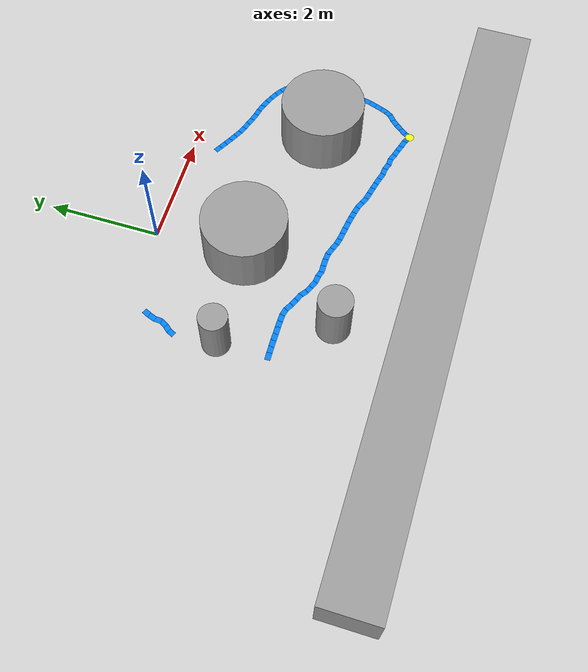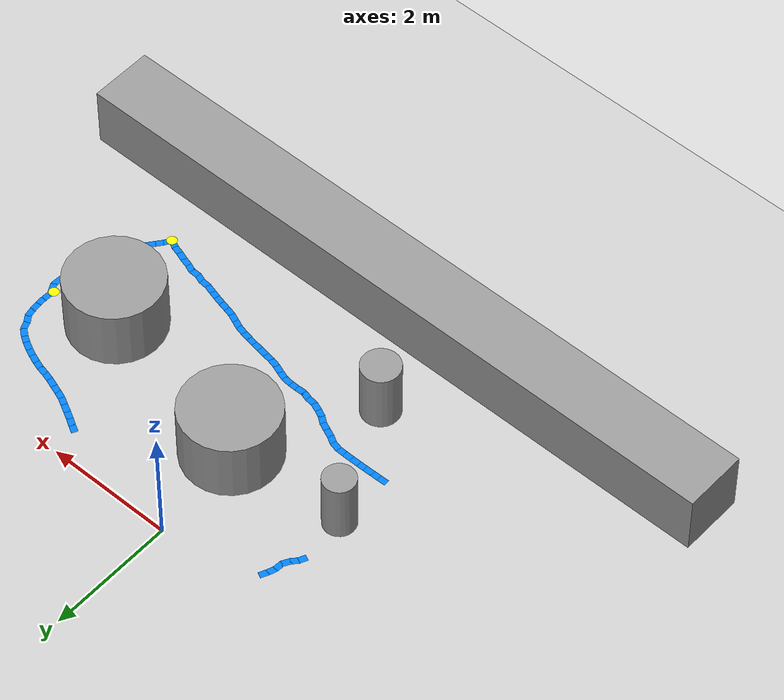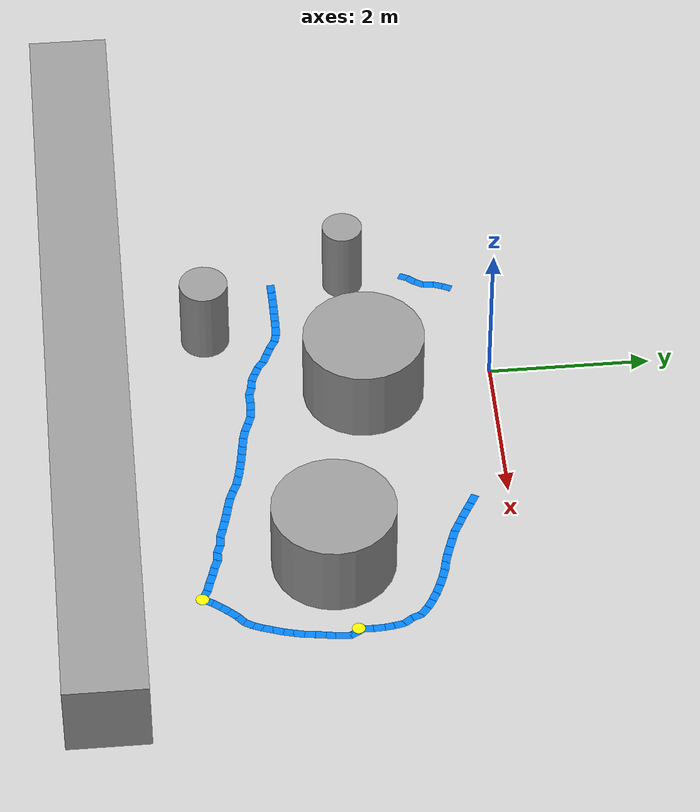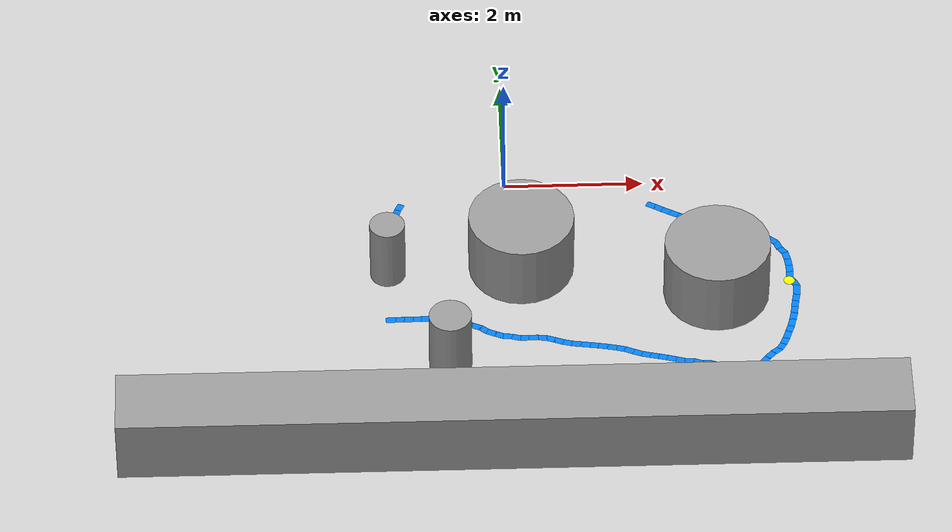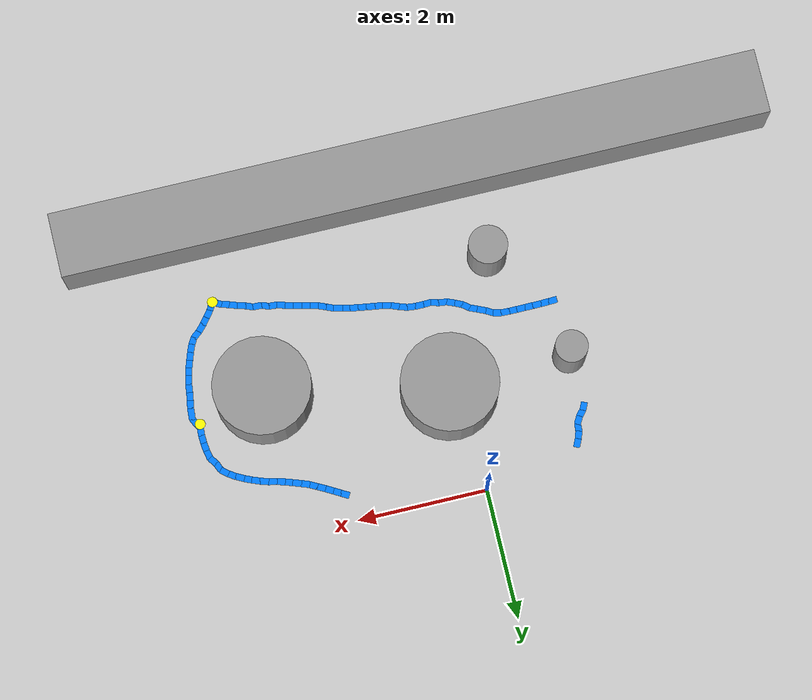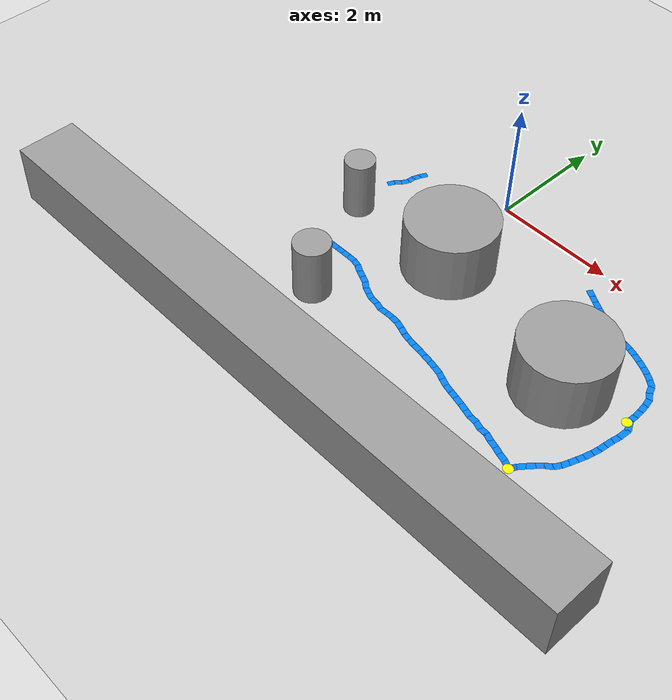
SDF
<sdf version="1.6">
 <world name="default">
  <include><uri>model://sun</uri></include>
  <include><uri>model://ground_plane</uri></include>
  <model name="wall_south">
   <static>true</static>
   <pose>0 -5.0 0.5 0 0 0</pose>
   <link name="link">
    <collision name="collision"><geometry><box><size>11.0 1.0 1.0</size></box></geometry></collision>
    <visual name="visual">
     <geometry><box><size>11.0 1.0 1.0</size></box></geometry>
     <material>
      <script><uri>file://media/materials/scripts/gazebo.material</uri><name>Gazebo/Grey</name></script>
     </material>
    </visual>
   </link>
  </model>
  <model name="obstacle_5">
   <static>true</static>
   <pose>0.20000000000000018 -1.5999999999999996 0.5 0 0 0</pose>
   <link name="link">
    <visual name="visual">
     <geometry><cylinder><radius>0.75</radius><length>1.0</length></cylinder></geometry>
     <material>
      <script><uri>file://media/materials/scripts/gazebo.material</uri><name>Gazebo/Grey</name></script>
     </material>
    </visual>
    <collision name="collision">
     <geometry><cylinder><radius>0.75</radius><length>1.0</length></cylinder></geometry>
    </collision>
   </link>
  </model>
  <model name="obstacle_9">
   <static>true</static>
   <pose>-0.8499999999999996 -3.5 0.5 0 0 0</pose>
   <link name="link">
    <visual name="visual">
     <geometry><cylinder><radius>0.30000000000000004</radius><length>1.0</length></cylinder></geometry>
     <material>
      <script><uri>file://media/materials/scripts/gazebo.material</uri><name>Gazebo/Grey</name></script>
     </material>
    </visual>
    <collision name="collision">
     <geometry><cylinder><radius>0.30000000000000004</radius><length>1.0</length></cylinder></geometry>
    </collision>
   </link>
  </model>
  <model name="obstacle_12">
   <static>true</static>
   <pose>2.950000000000001 -2.1999999999999997 0.5 0 0 0</pose>
   <link name="link">
    <visual name="visual">
     <geometry><cylinder><radius>0.75</radius><length>1.0</length></cylinder></geometry>
     <material>
      <script><uri>file://media/materials/scripts/gazebo.material</uri><name>Gazebo/Grey</name></script>
     </material>
    </visual>
    <collision name="collision">
     <geometry><cylinder><radius>0.75</radius><length>1.0</length></cylinder></geometry>
    </collision>
   </link>
  </model>
  <model name="obstacle_16">
   <static>true</static>
   <pose>-1.6999999999999997 -1.6999999999999997 0.5 0 0 0</pose>
   <link name="link">
    <visual name="visual">
     <geometry><cylinder><radius>0.25</radius><length>1.0</length></cylinder></geometry>
     <material>
      <script><uri>file://media/materials/scripts/gazebo.material</uri><name>Gazebo/Grey</name></script>
     </material>
    </visual>
    <collision name="collision">
     <geometry><cylinder><radius>0.25</radius><length>1.0</length></cylinder></geometry>
    </collision>
   </link>
  </model>
  <model name="yellow_dot_marker_4">
   <static>true</static>
   <pose>3.4 -3.8 0.00015 0 0 0</pose>
   <link name="link">
    <visual name="visual">
     <geometry><cylinder><radius>0.08</radius><length>0.0001</length></cylinder></geometry>
     <material><ambient>1 1 0 1</ambient><diffuse>1 1 0 1</diffuse></material>
    </visual>
   </link>
  </model>
  <model name="yellow_dot_marker_5">
   <static>true</static>
   <pose>4.0 -2.0 0.00015 0 0 0</pose>
   <link name="link">
    <visual name="visual">
     <geometry><cylinder><radius>0.08</radius><length>0.0001</length></cylinder></geometry>
     <material><ambient>1 1 0 1</ambient><diffuse>1 1 0 1</diffuse></material>
    </visual>
   </link>
  </model>
  <model name="painted_floor_segment_41">
   <static>true</static>
   <pose>-1.7423629760742185 -0.9108085632324219 0.0001 0 0 1.1312007621630067</pose>
   <link name="link">
    <visual name="visual">
     <geometry><box><size>0.1244098952750536 0.1 0.0001</size></box></geometry>
     <material><ambient>0 0.5 1 1.0</ambient><diffuse>0 0.5 1 1.0</diffuse></material>
    </visual>
   </link>
  </model>
  <model name="painted_floor_segment_42">
   <static>true</static>
   <pose>-1.6804426193237303 -0.8166542053222656 0.0001 0 0 0.8487357690553756</pose>
   <link name="link">
    <visual name="visual">
     <geometry><box><size>0.12600263950079482 0.1 0.0001</size></box></geometry>
     <material><ambient>0 0.5 1 1.0</ambient><diffuse>0 0.5 1 1.0</diffuse></material>
    </visual>
   </link>
  </model>
  <model name="painted_floor_segment_43">
   <static>true</static>
   <pose>-1.6135547637939451 -0.7209470748901365 0.0001 0 0 1.067454307052295</pose>
   <link name="link">
    <visual name="visual">
     <geometry><box><size>0.13242104696125248 0.1 0.0001</size></box></geometry>
     <material><ambient>0 0.5 1 1.0</ambient><diffuse>0 0.5 1 1.0</diffuse></material>
    </visual>
   </link>
  </model>
  <model name="painted_floor_segment_44">
   <static>true</static>
   <pose>-1.5815156936645507 -0.6100149154663081 0.0001 0 0 1.519208116874947</pose>
   <link name="link">
    <visual name="visual">
     <geometry><box><size>0.12822375513555426 0.1 0.0001</size></box></geometry>
     <material><ambient>0 0.5 1 1.0</ambient><diffuse>0 0.5 1 1.0</diffuse></material>
    </visual>
   </link>
  </model>
  <model name="painted_floor_segment_45">
   <static>true</static>
   <pose>-1.5586912155151367 -0.49556388854980415 0.0001 0 0 1.2320116501793648</pose>
   <link name="link">
    <visual name="visual">
     <geometry><box><size>0.1311963893132032 0.1 0.0001</size></box></geometry>
     <material><ambient>0 0.5 1 1.0</ambient><diffuse>0 0.5 1 1.0</diffuse></material>
    </visual>
   </link>
  </model>
  <model name="painted_floor_segment_46">
   <static>true</static>
   <pose>-1.51235294342041 -0.38382892608642516 0.0001 0 0 1.1249761540294048</pose>
   <link name="link">
    <visual name="visual">
     <geometry><box><size>0.13530267455555228 0.1 0.0001</size></box></geometry>
     <material><ambient>0 0.5 1 1.0</ambient><diffuse>0 0.5 1 1.0</diffuse></material>
    </visual>
   </link>
  </model>
  <model name="painted_floor_segment_109">
   <static>true</static>
   <pose>-1.6761705398559568 -2.6102993011474607 0.0001 0 0 0.033875611033313574</pose>
   <link name="link">
    <visual name="visual">
     <geometry><box><size>0.13749706005788387 0.1 0.0001</size></box></geometry>
     <material><ambient>0 0.5 1 1.0</ambient><diffuse>0 0.5 1 1.0</diffuse></material>
    </visual>
   </link>
  </model>
  <model name="painted_floor_segment_110">
   <static>true</static>
   <pose>-1.5512229919433593 -2.606821250915527 0.0001 0 0 0.021782268640905593</pose>
   <link name="link">
    <visual name="visual">
     <geometry><box><size>0.1374990487705488 0.1 0.0001</size></box></geometry>
     <material><ambient>0 0.5 1 1.0</ambient><diffuse>0 0.5 1 1.0</diffuse></material>
    </visual>
   </link>
  </model>
  <model name="painted_floor_segment_111">
   <static>true</static>
   <pose>-1.426243209838867 -2.6046902656555173 0.0001 0 0 0.012315723192886398</pose>
   <link name="link">
    <visual name="visual">
     <geometry><box><size>0.13749951759377857 0.1 0.0001</size></box></geometry>
     <material><ambient>0 0.5 1 1.0</ambient><diffuse>0 0.5 1 1.0</diffuse></material>
    </visual>
   </link>
  </model>
  <model name="painted_floor_segment_112">
   <static>true</static>
   <pose>-1.301249504089355 -2.603524875640869 0.0001 0 0 0.006330922243232914</pose>
   <link name="link">
    <visual name="visual">
     <geometry><box><size>0.13749981820988985 0.1 0.0001</size></box></geometry>
     <material><ambient>0 0.5 1 1.0</ambient><diffuse>0 0.5 1 1.0</diffuse></material>
    </visual>
   </link>
  </model>
  <model name="painted_floor_segment_113">
   <static>true</static>
   <pose>-1.176250839233398 -2.6030396461486816 0.0001 0 0 0.00143279931249533</pose>
   <link name="link">
    <visual name="visual">
     <geometry><box><size>0.13750014113794928 0.1 0.0001</size></box></geometry>
     <material><ambient>0 0.5 1 1.0</ambient><diffuse>0 0.5 1 1.0</diffuse></material>
    </visual>
   </link>
  </model>
  <model name="painted_floor_segment_114">
   <static>true</static>
   <pose>-1.0512517929077143 -2.6032402992248533 0.0001 0 0 -0.004643286992941639</pose>
   <link name="link">
    <visual name="visual">
     <geometry><box><size>0.13749938416504634 0.1 0.0001</size></box></geometry>
     <material><ambient>0 0.5 1 1.0</ambient><diffuse>0 0.5 1 1.0</diffuse></material>
    </visual>
   </link>
  </model>
  <model name="painted_floor_segment_115">
   <static>true</static>
   <pose>-0.9263353347778316 -2.6055779457092285 0.0001 0 0 -0.03279068219478601</pose>
   <link name="link">
    <visual name="visual">
     <geometry><box><size>0.13739216335921708 0.1 0.0001</size></box></geometry>
     <material><ambient>0 0.5 1 1.0</ambient><diffuse>0 0.5 1 1.0</diffuse></material>
    </visual>
   </link>
  </model>
  <model name="painted_floor_segment_116">
   <static>true</static>
   <pose>-0.8040637969970699 -2.622592735290527 0.0001 0 0 -0.24503864645142623</pose>
   <link name="link">
    <visual name="visual">
     <geometry><box><size>0.13573372162586964 0.1 0.0001</size></box></geometry>
     <material><ambient>0 0.5 1 1.0</ambient><diffuse>0 0.5 1 1.0</diffuse></material>
    </visual>
   </link>
  </model>
  <model name="painted_floor_segment_117">
   <static>true</static>
   <pose>-0.691549491882324 -2.6679493904113767 0.0001 0 0 -0.5233985109407026</pose>
   <link name="link">
    <visual name="visual">
     <geometry><box><size>0.13375935888797305 0.1 0.0001</size></box></geometry>
     <material><ambient>0 0.5 1 1.0</ambient><diffuse>0 0.5 1 1.0</diffuse></material>
    </visual>
   </link>
  </model>
  <model name="painted_floor_segment_118">
   <static>true</static>
   <pose>-0.5816646575927731 -2.7231714248657224 0.0001 0 0 -0.40942815982470404</pose>
   <link name="link">
    <visual name="visual">
     <geometry><box><size>0.13723707591125028 0.1 0.0001</size></box></geometry>
     <material><ambient>0 0.5 1 1.0</ambient><diffuse>0 0.5 1 1.0</diffuse></material>
    </visual>
   </link>
  </model>
  <model name="painted_floor_segment_119">
   <static>true</static>
   <pose>-0.4673843383789058 -2.773114490509033 0.0001 0 0 -0.41459274197206014</pose>
   <link name="link">
    <visual name="visual">
     <geometry><box><size>0.1371409837910566 0.1 0.0001</size></box></geometry>
     <material><ambient>0 0.5 1 1.0</ambient><diffuse>0 0.5 1 1.0</diffuse></material>
    </visual>
   </link>
  </model>
  <model name="painted_floor_segment_120">
   <static>true</static>
   <pose>-0.36245727539062456 -2.8354238510131835 0.0001 0 0 -0.6605967090200694</pose>
   <link name="link">
    <visual name="visual">
     <geometry><box><size>0.13337585872791097 0.1 0.0001</size></box></geometry>
     <material><ambient>0 0.5 1 1.0</ambient><diffuse>0 0.5 1 1.0</diffuse></material>
    </visual>
   </link>
  </model>
  <model name="painted_floor_segment_121">
   <static>true</static>
   <pose>-0.25864715576171804 -2.898458480834961 0.0001 0 0 -0.4326691607373632</pose>
   <link name="link">
    <visual name="visual">
     <geometry><box><size>0.13555676624187546 0.1 0.0001</size></box></geometry>
     <material><ambient>0 0.5 1 1.0</ambient><diffuse>0 0.5 1 1.0</diffuse></material>
    </visual>
   </link>
  </model>
  <model name="painted_floor_segment_122">
   <static>true</static>
   <pose>-0.14772167205810494 -2.9460824012756346 0.0001 0 0 -0.377266397360261</pose>
   <link name="link">
    <visual name="visual">
     <geometry><box><size>0.13012167026387456 0.1 0.0001</size></box></geometry>
     <material><ambient>0 0.5 1 1.0</ambient><diffuse>0 0.5 1 1.0</diffuse></material>
    </visual>
   </link>
  </model>
  <model name="painted_floor_segment_123">
   <static>true</static>
   <pose>-0.03077812194824192 -2.9748073577880856 0.0001 0 0 -0.11149509957731828</pose>
   <link name="link">
    <visual name="visual">
     <geometry><box><size>0.13715655622651257 0.1 0.0001</size></box></geometry>
     <material><ambient>0 0.5 1 1.0</ambient><diffuse>0 0.5 1 1.0</diffuse></material>
    </visual>
   </link>
  </model>
  <model name="painted_floor_segment_124">
   <static>true</static>
   <pose>0.08680362701416033 -2.999121856689453 0.0001 0 0 -0.3028038407496096</pose>
   <link name="link">
    <visual name="visual">
     <geometry><box><size>0.128207841653458 0.1 0.0001</size></box></geometry>
     <material><ambient>0 0.5 1 1.0</ambient><diffuse>0 0.5 1 1.0</diffuse></material>
    </visual>
   </link>
  </model>
  <model name="painted_floor_segment_125">
   <static>true</static>
   <pose>0.2048583984375001 -3.013742351531982 0.0001 0 0 0.04413865250843836</pose>
   <link name="link">
    <visual name="visual">
     <geometry><box><size>0.13747947949405256 0.1 0.0001</size></box></geometry>
     <material><ambient>0 0.5 1 1.0</ambient><diffuse>0 0.5 1 1.0</diffuse></material>
    </visual>
   </link>
  </model>
  <model name="painted_floor_segment_126">
   <static>true</static>
   <pose>0.32977294921875 -3.01177806854248 0.0001 0 0 -0.012691626203786052</pose>
   <link name="link">
    <visual name="visual">
     <geometry><box><size>0.13747750277312112 0.1 0.0001</size></box></geometry>
     <material><ambient>0 0.5 1 1.0</ambient><diffuse>0 0.5 1 1.0</diffuse></material>
    </visual>
   </link>
  </model>
  <model name="painted_floor_segment_127">
   <static>true</static>
   <pose>0.45431575775146493 -3.0195061683654782 0.0001 0 0 -0.11128883522409475</pose>
   <link name="link">
    <visual name="visual">
     <geometry><box><size>0.1373775952661571 0.1 0.0001</size></box></geometry>
     <material><ambient>0 0.5 1 1.0</ambient><diffuse>0 0.5 1 1.0</diffuse></material>
    </visual>
   </link>
  </model>
  <model name="painted_floor_segment_128">
   <static>true</static>
   <pose>0.5755434036254887 -3.0462284088134766 0.0001 0 0 -0.32272406624446964</pose>
   <link name="link">
    <visual name="visual">
     <geometry><box><size>0.1372590728521774 0.1 0.0001</size></box></geometry>
     <material><ambient>0 0.5 1 1.0</ambient><diffuse>0 0.5 1 1.0</diffuse></material>
    </visual>
   </link>
  </model>
  <model name="painted_floor_segment_129">
   <static>true</static>
   <pose>0.6930213928222662 -3.088491916656494 0.0001 0 0 -0.36792032400811264</pose>
   <link name="link">
    <visual name="visual">
     <geometry><box><size>0.13747895650764969 0.1 0.0001</size></box></geometry>
     <material><ambient>0 0.5 1 1.0</ambient><diffuse>0 0.5 1 1.0</diffuse></material>
    </visual>
   </link>
  </model>
  <model name="painted_floor_segment_130">
   <static>true</static>
   <pose>0.8119588851928716 -3.125939655303955 0.0001 0 0 -0.24209195636669206</pose>
   <link name="link">
    <visual name="visual">
     <geometry><box><size>0.13739048044023874 0.1 0.0001</size></box></geometry>
     <material><ambient>0 0.5 1 1.0</ambient><diffuse>0 0.5 1 1.0</diffuse></material>
    </visual>
   </link>
  </model>
  <model name="painted_floor_segment_131">
   <static>true</static>
   <pose>0.9344198226928717 -3.150005054473877 0.0001 0 0 -0.14602859814575406</pose>
   <link name="link">
    <visual name="visual">
     <geometry><box><size>0.13749345888679373 0.1 0.0001</size></box></geometry>
     <material><ambient>0 0.5 1 1.0</ambient><diffuse>0 0.5 1 1.0</diffuse></material>
    </visual>
   </link>
  </model>
  <model name="painted_floor_segment_132">
   <static>true</static>
   <pose>1.0580783843994146 -3.1682463645935055 0.0001 0 0 -0.14688598930015895</pose>
   <link name="link">
    <visual name="visual">
     <geometry><box><size>0.13749939673708372 0.1 0.0001</size></box></geometry>
     <material><ambient>0 0.5 1 1.0</ambient><diffuse>0 0.5 1 1.0</diffuse></material>
    </visual>
   </link>
  </model>
  <model name="painted_floor_segment_133">
   <static>true</static>
   <pose>1.1816928863525393 -3.186802101135254 0.0001 0 0 -0.15110847718758344</pose>
   <link name="link">
    <visual name="visual">
     <geometry><box><size>0.13749998811952432 0.1 0.0001</size></box></geometry>
     <material><ambient>0 0.5 1 1.0</ambient><diffuse>0 0.5 1 1.0</diffuse></material>
    </visual>
   </link>
  </model>
  <model name="painted_floor_segment_134">
   <static>true</static>
   <pose>1.305022430419922 -3.207076644897461 0.0001 0 0 -0.17476448936830208</pose>
   <link name="link">
    <visual name="visual">
     <geometry><box><size>0.13748610054181679 0.1 0.0001</size></box></geometry>
     <material><ambient>0 0.5 1 1.0</ambient><diffuse>0 0.5 1 1.0</diffuse></material>
    </visual>
   </link>
  </model>
  <model name="painted_floor_segment_135">
   <static>true</static>
   <pose>1.4277626037597662 -3.230628490447998 0.0001 0 0 -0.20439303569941225</pose>
   <link name="link">
    <visual name="visual">
     <geometry><box><size>0.13749865791039953 0.1 0.0001</size></box></geometry>
     <material><ambient>0 0.5 1 1.0</ambient><diffuse>0 0.5 1 1.0</diffuse></material>
    </visual>
   </link>
  </model>
  <model name="painted_floor_segment_136">
   <static>true</static>
   <pose>1.5495876312255863 -3.2583814620971676 0.0001 0 0 -0.24359095582439516</pose>
   <link name="link">
    <visual name="visual">
     <geometry><box><size>0.1374358886155643 0.1 0.0001</size></box></geometry>
     <material><ambient>0 0.5 1 1.0</ambient><diffuse>0 0.5 1 1.0</diffuse></material>
    </visual>
   </link>
  </model>
  <model name="painted_floor_segment_137">
   <static>true</static>
   <pose>1.6674617767333988 -3.298322868347168 0.0001 0 0 -0.40989048072234174</pose>
   <link name="link">
    <visual name="visual">
     <geometry><box><size>0.13731953110125558 0.1 0.0001</size></box></geometry>
     <material><ambient>0 0.5 1 1.0</ambient><diffuse>0 0.5 1 1.0</diffuse></material>
    </visual>
   </link>
  </model>
  <model name="painted_floor_segment_138">
   <static>true</static>
   <pose>1.7826084136962894 -3.3465879440307615 0.0001 0 0 -0.38394583419775563</pose>
   <link name="link">
    <visual name="visual">
     <geometry><box><size>0.13738012844605657 0.1 0.0001</size></box></geometry>
     <material><ambient>0 0.5 1 1.0</ambient><diffuse>0 0.5 1 1.0</diffuse></material>
    </visual>
   </link>
  </model>
  <model name="painted_floor_segment_139">
   <static>true</static>
   <pose>1.9010898590087892 -3.385178565979004 0.0001 0 0 -0.24581854223561372</pose>
   <link name="link">
    <visual name="visual">
     <geometry><box><size>0.1374119901006366 0.1 0.0001</size></box></geometry>
     <material><ambient>0 0.5 1 1.0</ambient><diffuse>0 0.5 1 1.0</diffuse></material>
    </visual>
   </link>
  </model>
  <model name="painted_floor_segment_140">
   <static>true</static>
   <pose>2.022653198242188 -3.4140583038330075 0.0001 0 0 -0.22067993992228305</pose>
   <link name="link">
    <visual name="visual">
     <geometry><box><size>0.13749252574896842 0.1 0.0001</size></box></geometry>
     <material><ambient>0 0.5 1 1.0</ambient><diffuse>0 0.5 1 1.0</diffuse></material>
    </visual>
   </link>
  </model>
  <model name="painted_floor_segment_141">
   <static>true</static>
   <pose>2.144299697875977 -3.442769432067871 0.0001 0 0 -0.2428780840043174</pose>
   <link name="link">
    <visual name="visual">
     <geometry><box><size>0.13749976890840698 0.1 0.0001</size></box></geometry>
     <material><ambient>0 0.5 1 1.0</ambient><diffuse>0 0.5 1 1.0</diffuse></material>
    </visual>
   </link>
  </model>
  <model name="painted_floor_segment_142">
   <static>true</static>
   <pose>2.2650981903076177 -3.4744935035705566 0.0001 0 0 -0.2707834136206825</pose>
   <link name="link">
    <visual name="visual">
     <geometry><box><size>0.13729537512326215 0.1 0.0001</size></box></geometry>
     <material><ambient>0 0.5 1 1.0</ambient><diffuse>0 0.5 1 1.0</diffuse></material>
    </visual>
   </link>
  </model>
  <model name="painted_floor_segment_143">
   <static>true</static>
   <pose>2.384866333007813 -3.508872699737549 0.0001 0 0 -0.28830975819350024</pose>
   <link name="link">
    <visual name="visual">
     <geometry><box><size>0.13684554270368265 0.1 0.0001</size></box></geometry>
     <material><ambient>0 0.5 1 1.0</ambient><diffuse>0 0.5 1 1.0</diffuse></material>
    </visual>
   </link>
  </model>
  <model name="painted_floor_segment_144">
   <static>true</static>
   <pose>2.506839370727539 -3.530913734436035 0.0001 0 0 -0.06974563611766521</pose>
   <link name="link">
    <visual name="visual">
     <geometry><box><size>0.13747756691447224 0.1 0.0001</size></box></geometry>
     <material><ambient>0 0.5 1 1.0</ambient><diffuse>0 0.5 1 1.0</diffuse></material>
    </visual>
   </link>
  </model>
  <model name="painted_floor_segment_145">
   <static>true</static>
   <pose>2.6262985229492184 -3.5560991287231443 0.0001 0 0 -0.34968547209018624</pose>
   <link name="link">
    <visual name="visual">
     <geometry><box><size>0.13376201716421757 0.1 0.0001</size></box></geometry>
     <material><ambient>0 0.5 1 1.0</ambient><diffuse>0 0.5 1 1.0</diffuse></material>
    </visual>
   </link>
  </model>
  <model name="painted_floor_segment_146">
   <static>true</static>
   <pose>2.745829010009766 -3.579149627685547 0.0001 0 0 -0.03555608969993305</pose>
   <link name="link">
    <visual name="visual">
     <geometry><box><size>0.13738709812655972 0.1 0.0001</size></box></geometry>
     <material><ambient>0 0.5 1 1.0</ambient><diffuse>0 0.5 1 1.0</diffuse></material>
    </visual>
   </link>
  </model>
  <model name="painted_floor_segment_147">
   <static>true</static>
   <pose>2.863410568237305 -3.6034188270568848 0.0001 0 0 -0.38019848084945806</pose>
   <link name="link">
    <visual name="visual">
     <geometry><box><size>0.13071326998004826 0.1 0.0001</size></box></geometry>
     <material><ambient>0 0.5 1 1.0</ambient><diffuse>0 0.5 1 1.0</diffuse></material>
    </visual>
   </link>
  </model>
  <model name="painted_floor_segment_148">
   <static>true</static>
   <pose>2.9785003662109375 -3.642458152770996 0.0001 0 0 -0.27630524316068766</pose>
   <link name="link">
    <visual name="visual">
     <geometry><box><size>0.1370153914844416 0.1 0.0001</size></box></geometry>
     <material><ambient>0 0.5 1 1.0</ambient><diffuse>0 0.5 1 1.0</diffuse></material>
    </visual>
   </link>
  </model>
  <model name="painted_floor_segment_149">
   <static>true</static>
   <pose>3.097379684448242 -3.6801683425903318 0.0001 0 0 -0.33793507522709837</pose>
   <link name="link">
    <visual name="visual">
     <geometry><box><size>0.1374925105119346 0.1 0.0001</size></box></geometry>
     <material><ambient>0 0.5 1 1.0</ambient><diffuse>0 0.5 1 1.0</diffuse></material>
    </visual>
   </link>
  </model>
  <model name="painted_floor_segment_150">
   <static>true</static>
   <pose>3.21641845703125 -3.7180100440979 0.0001 0 0 -0.27763428278717817</pose>
   <link name="link">
    <visual name="visual">
     <geometry><box><size>0.1374319354689526 0.1 0.0001</size></box></geometry>
     <material><ambient>0 0.5 1 1.0</ambient><diffuse>0 0.5 1 1.0</diffuse></material>
    </visual>
   </link>
  </model>
  <model name="painted_floor_segment_151">
   <static>true</static>
   <pose>3.3382477283477785 -3.7675657987594606 0.0001 0 0 -0.48362675299970326</pose>
   <link name="link">
    <visual name="visual">
     <geometry><box><size>0.15345420516711636 0.1 0.0001</size></box></geometry>
     <material><ambient>0 0.5 1 1.0</ambient><diffuse>0 0.5 1 1.0</diffuse></material>
    </visual>
   </link>
  </model>
  <model name="painted_floor_segment_152">
   <static>true</static>
   <pose>3.4304401874542236 -3.74545476436615 0.0001 0 0 1.0617776330392261</pose>
   <link name="link">
    <visual name="visual">
     <geometry><box><size>0.1374212479796205 0.1 0.0001</size></box></geometry>
     <material><ambient>0 0.5 1 1.0</ambient><diffuse>0 0.5 1 1.0</diffuse></material>
    </visual>
   </link>
  </model>
  <model name="painted_floor_segment_153">
   <static>true</static>
   <pose>3.4988243103027346 -3.641246223449707 0.0001 0 0 0.9183796353862327</pose>
   <link name="link">
    <visual name="visual">
     <geometry><box><size>0.13749908652708887 0.1 0.0001</size></box></geometry>
     <material><ambient>0 0.5 1 1.0</ambient><diffuse>0 0.5 1 1.0</diffuse></material>
    </visual>
   </link>
  </model>
  <model name="painted_floor_segment_154">
   <static>true</static>
   <pose>3.5756668090820316 -3.542680644989013 0.0001 0 0 0.8988460495027994</pose>
   <link name="link">
    <visual name="visual">
     <geometry><box><size>0.13746952173665292 0.1 0.0001</size></box></geometry>
     <material><ambient>0 0.5 1 1.0</ambient><diffuse>0 0.5 1 1.0</diffuse></material>
    </visual>
   </link>
  </model>
  <model name="painted_floor_segment_155">
   <static>true</static>
   <pose>3.6569862365722656 -3.4483513832092285 0.0001 0 0 0.8196038876574219</pose>
   <link name="link">
    <visual name="visual">
     <geometry><box><size>0.13673939663739212 0.1 0.0001</size></box></geometry>
     <material><ambient>0 0.5 1 1.0</ambient><diffuse>0 0.5 1 1.0</diffuse></material>
    </visual>
   </link>
  </model>
  <model name="painted_floor_segment_156">
   <static>true</static>
   <pose>3.7475223541259766 -3.3641283988952635 0.0001 0 0 0.6785793846139078</pose>
   <link name="link">
    <visual name="visual">
     <geometry><box><size>0.13597697988889132 0.1 0.0001</size></box></geometry>
     <material><ambient>0 0.5 1 1.0</ambient><diffuse>0 0.5 1 1.0</diffuse></material>
    </visual>
   </link>
  </model>
  <model name="painted_floor_segment_157">
   <static>true</static>
   <pose>3.8236957550048833 -3.278035545349121 0.0001 0 0 1.0353649541633985</pose>
   <link name="link">
    <visual name="visual">
     <geometry><box><size>0.1209852443091256 0.1 0.0001</size></box></geometry>
     <material><ambient>0 0.5 1 1.0</ambient><diffuse>0 0.5 1 1.0</diffuse></material>
    </visual>
   </link>
  </model>
  <model name="painted_floor_segment_158">
   <static>true</static>
   <pose>3.873707580566407 -3.176659107208252 0.0001 0 0 1.1851712420652873</pose>
   <link name="link">
    <visual name="visual">
     <geometry><box><size>0.12840455335146236 0.1 0.0001</size></box></geometry>
     <material><ambient>0 0.5 1 1.0</ambient><diffuse>0 0.5 1 1.0</diffuse></material>
    </visual>
   </link>
  </model>
  <model name="painted_floor_segment_159">
   <static>true</static>
   <pose>3.9157733917236337 -3.064021873474121 0.0001 0 0 1.2399596212686896</pose>
   <link name="link">
    <visual name="visual">
     <geometry><box><size>0.13621369049126594 0.1 0.0001</size></box></geometry>
     <material><ambient>0 0.5 1 1.0</ambient><diffuse>0 0.5 1 1.0</diffuse></material>
    </visual>
   </link>
  </model>
  <model name="painted_floor_segment_160">
   <static>true</static>
   <pose>3.955908966064454 -2.9462936401367186 0.0001 0 0 1.2444921507147195</pose>
   <link name="link">
    <visual name="visual">
     <geometry><box><size>0.13742669875897073 0.1 0.0001</size></box></geometry>
     <material><ambient>0 0.5 1 1.0</ambient><diffuse>0 0.5 1 1.0</diffuse></material>
    </visual>
   </link>
  </model>
  <model name="painted_floor_segment_161">
   <static>true</static>
   <pose>3.9910907745361337 -2.826532173156738 0.0001 0 0 1.325651016506802</pose>
   <link name="link">
    <visual name="visual">
     <geometry><box><size>0.13740827975170075 0.1 0.0001</size></box></geometry>
     <material><ambient>0 0.5 1 1.0</ambient><diffuse>0 0.5 1 1.0</diffuse></material>
    </visual>
   </link>
  </model>
  <model name="painted_floor_segment_162">
   <static>true</static>
   <pose>4.0205120086669925 -2.7051215171813965 0.0001 0 0 1.3404497270480624</pose>
   <link name="link">
    <visual name="visual">
     <geometry><box><size>0.1374333703803593 0.1 0.0001</size></box></geometry>
     <material><ambient>0 0.5 1 1.0</ambient><diffuse>0 0.5 1 1.0</diffuse></material>
    </visual>
   </link>
  </model>
  <model name="painted_floor_segment_163">
   <static>true</static>
   <pose>4.041719818115235 -2.5822309494018554 0.0001 0 0 1.4593708820416305</pose>
   <link name="link">
    <visual name="visual">
     <geometry><box><size>0.13740798356767975 0.1 0.0001</size></box></geometry>
     <material><ambient>0 0.5 1 1.0</ambient><diffuse>0 0.5 1 1.0</diffuse></material>
    </visual>
   </link>
  </model>
  <model name="painted_floor_segment_164">
   <static>true</static>
   <pose>4.057594680786133 -2.4586437225341795 0.0001 0 0 1.426641498889631</pose>
   <link name="link">
    <visual name="visual">
     <geometry><box><size>0.13675449900746303 0.1 0.0001</size></box></geometry>
     <material><ambient>0 0.5 1 1.0</ambient><diffuse>0 0.5 1 1.0</diffuse></material>
    </visual>
   </link>
  </model>
  <model name="painted_floor_segment_165">
   <static>true</static>
   <pose>4.077852249145508 -2.3356692314147947 0.0001 0 0 1.3885255281303561</pose>
   <link name="link">
    <visual name="visual">
     <geometry><box><size>0.1374853411948237 0.1 0.0001</size></box></geometry>
     <material><ambient>0 0.5 1 1.0</ambient><diffuse>0 0.5 1 1.0</diffuse></material>
    </visual>
   </link>
  </model>
  <model name="painted_floor_segment_166">
   <static>true</static>
   <pose>4.094589996337891 -2.187105560302734 0.0001 0 0 1.508767411791081</pose>
   <link name="link">
    <visual name="visual">
     <geometry><box><size>0.1920014853909791 0.1 0.0001</size></box></geometry>
     <material><ambient>0 0.5 1 1.0</ambient><diffuse>0 0.5 1 1.0</diffuse></material>
    </visual>
   </link>
  </model>
  <model name="painted_floor_segment_167">
   <static>true</static>
   <pose>4.056175613403322 -2.0236549377441406 0.0001 0 0 2.0919016208918686</pose>
   <link name="link">
    <visual name="visual">
     <geometry><box><size>0.1936643067126805 0.1 0.0001</size></box></geometry>
     <material><ambient>0 0.5 1 1.0</ambient><diffuse>0 0.5 1 1.0</diffuse></material>
    </visual>
   </link>
  </model>
  <model name="painted_floor_segment_168">
   <static>true</static>
   <pose>4.014986419677735 -1.8848735809326171 0.0001 0 0 1.5286152553238572</pose>
   <link name="link">
    <visual name="visual">
     <geometry><box><size>0.13748213693952382 0.1 0.0001</size></box></geometry>
     <material><ambient>0 0.5 1 1.0</ambient><diffuse>0 0.5 1 1.0</diffuse></material>
    </visual>
   </link>
  </model>
  <model name="painted_floor_segment_169">
   <static>true</static>
   <pose>4.01487922668457 -1.7600246429443358 0.0001 0 0 1.61470767005086</pose>
   <link name="link">
    <visual name="visual">
     <geometry><box><size>0.13744030087242048 0.1 0.0001</size></box></geometry>
     <material><ambient>0 0.5 1 1.0</ambient><diffuse>0 0.5 1 1.0</diffuse></material>
    </visual>
   </link>
  </model>
  <model name="painted_floor_segment_170">
   <static>true</static>
   <pose>4.003948211669922 -1.6356658935546873 0.0001 0 0 1.7022239068660836</pose>
   <link name="link">
    <visual name="visual">
     <geometry><box><size>0.13746697298811622 0.1 0.0001</size></box></geometry>
     <material><ambient>0 0.5 1 1.0</ambient><diffuse>0 0.5 1 1.0</diffuse></material>
    </visual>
   </link>
  </model>
  <model name="painted_floor_segment_171">
   <static>true</static>
   <pose>3.982340240478516 -1.5127124786376953 0.0001 0 0 1.787311204228545</pose>
   <link name="link">
    <visual name="visual">
     <geometry><box><size>0.1374246599369026 0.1 0.0001</size></box></geometry>
     <material><ambient>0 0.5 1 1.0</ambient><diffuse>0 0.5 1 1.0</diffuse></material>
    </visual>
   </link>
  </model>
  <model name="painted_floor_segment_172">
   <static>true</static>
   <pose>3.9325477600097667 -1.4021791458129882 0.0001 0 0 2.204254538349424</pose>
   <link name="link">
    <visual name="visual">
     <geometry><box><size>0.13518516204244918 0.1 0.0001</size></box></geometry>
     <material><ambient>0 0.5 1 1.0</ambient><diffuse>0 0.5 1 1.0</diffuse></material>
    </visual>
   </link>
  </model>
  <model name="painted_floor_segment_173">
   <static>true</static>
   <pose>3.873289108276368 -1.2958097457885738 0.0001 0 0 1.9535476739434638</pose>
   <link name="link">
    <visual name="visual">
     <geometry><box><size>0.1348102150479234 0.1 0.0001</size></box></geometry>
     <material><ambient>0 0.5 1 1.0</ambient><diffuse>0 0.5 1 1.0</diffuse></material>
    </visual>
   </link>
  </model>
  <model name="painted_floor_segment_174">
   <static>true</static>
   <pose>3.802470779418946 -1.199006080627441 0.0001 0 0 2.446654015100045</pose>
   <link name="link">
    <visual name="visual">
     <geometry><box><size>0.1372909203057117 0.1 0.0001</size></box></geometry>
     <material><ambient>0 0.5 1 1.0</ambient><diffuse>0 0.5 1 1.0</diffuse></material>
    </visual>
   </link>
  </model>
  <model name="painted_floor_segment_175">
   <static>true</static>
   <pose>3.7019687652587896 -1.1252954483032225 0.0001 0 0 2.570849545098964</pose>
   <link name="link">
    <visual name="visual">
     <geometry><box><size>0.1374358562129533 0.1 0.0001</size></box></geometry>
     <material><ambient>0 0.5 1 1.0</ambient><diffuse>0 0.5 1 1.0</diffuse></material>
    </visual>
   </link>
  </model>
  <model name="painted_floor_segment_176">
   <static>true</static>
   <pose>3.594034957885743 -1.0625881195068358 0.0001 0 0 2.659696433542934</pose>
   <link name="link">
    <visual name="visual">
     <geometry><box><size>0.13745593858066893 0.1 0.0001</size></box></geometry>
     <material><ambient>0 0.5 1 1.0</ambient><diffuse>0 0.5 1 1.0</diffuse></material>
    </visual>
   </link>
  </model>
  <model name="painted_floor_segment_177">
   <static>true</static>
   <pose>3.481626129150391 -1.0080978393554685 0.0001 0 0 2.720731953073271</pose>
   <link name="link">
    <visual name="visual">
     <geometry><box><size>0.1374954621024399 0.1 0.0001</size></box></geometry>
     <material><ambient>0 0.5 1 1.0</ambient><diffuse>0 0.5 1 1.0</diffuse></material>
    </visual>
   </link>
  </model>
  <model name="painted_floor_segment_178">
   <static>true</static>
   <pose>3.366352844238282 -0.9600109100341796 0.0001 0 0 2.772059600170628</pose>
   <link name="link">
    <visual name="visual">
     <geometry><box><size>0.13737745713032162 0.1 0.0001</size></box></geometry>
     <material><ambient>0 0.5 1 1.0</ambient><diffuse>0 0.5 1 1.0</diffuse></material>
    </visual>
   </link>
  </model>
  <model name="painted_floor_segment_179">
   <static>true</static>
   <pose>3.248858261108399 -0.9180824279785158 0.0001 0 0 2.8256287559057025</pose>
   <link name="link">
    <visual name="visual">
     <geometry><box><size>0.13717465500089096 0.1 0.0001</size></box></geometry>
     <material><ambient>0 0.5 1 1.0</ambient><diffuse>0 0.5 1 1.0</diffuse></material>
    </visual>
   </link>
  </model>
  <model name="painted_floor_segment_180">
   <static>true</static>
   <pose>3.128489303588868 -0.8857725143432615 0.0001 0 0 2.9329811520695377</pose>
   <link name="link">
    <visual name="visual">
     <geometry><box><size>0.13740662205148613 0.1 0.0001</size></box></geometry>
     <material><ambient>0 0.5 1 1.0</ambient><diffuse>0 0.5 1 1.0</diffuse></material>
    </visual>
   </link>
  </model>
  <model name="painted_floor_segment_181">
   <static>true</static>
   <pose>3.007417297363282 -0.8555736541748042 0.0001 0 0 2.861291217152002</pose>
   <link name="link">
    <visual name="visual">
     <geometry><box><size>0.1372889477283859 0.1 0.0001</size></box></geometry>
     <material><ambient>0 0.5 1 1.0</ambient><diffuse>0 0.5 1 1.0</diffuse></material>
    </visual>
   </link>
  </model>
  <model name="painted_floor_segment_182">
   <static>true</static>
   <pose>2.888466262817383 -0.8180929183959957 0.0001 0 0 2.811380538692966</pose>
   <link name="link">
    <visual name="visual">
     <geometry><box><size>0.13717235924318916 0.1 0.0001</size></box></geometry>
     <material><ambient>0 0.5 1 1.0</ambient><diffuse>0 0.5 1 1.0</diffuse></material>
    </visual>
   </link>
  </model>
  <model name="painted_floor_segment_183">
   <static>true</static>
   <pose>2.7706554412841804 -0.7770893096923825 0.0001 0 0 2.8019415640641063</pose>
   <link name="link">
    <visual name="visual">
     <geometry><box><size>0.13726414674515777 0.1 0.0001</size></box></geometry>
     <material><ambient>0 0.5 1 1.0</ambient><diffuse>0 0.5 1 1.0</diffuse></material>
    </visual>
   </link>
  </model>
  <model name="painted_floor_segment_184">
   <static>true</static>
   <pose>2.653340530395508 -0.734797096252441 0.0001 0 0 2.7892366964488495</pose>
   <link name="link">
    <visual name="visual">
     <geometry><box><size>0.13709311754241774 0.1 0.0001</size></box></geometry>
     <material><ambient>0 0.5 1 1.0</ambient><diffuse>0 0.5 1 1.0</diffuse></material>
    </visual>
   </link>
  </model>
  <model name="painted_floor_segment_185">
   <static>true</static>
   <pose>2.539958190917969 -0.6834293365478512 0.0001 0 0 2.643382993706666</pose>
   <link name="link">
    <visual name="visual">
     <geometry><box><size>0.1374832562127621 0.1 0.0001</size></box></geometry>
     <material><ambient>0 0.5 1 1.0</ambient><diffuse>0 0.5 1 1.0</diffuse></material>
    </visual>
   </link>
  </model>
  <model name="painted_floor_segment_186">
   <static>true</static>
   <pose>2.429678344726563 -0.6246084213256835 0.0001 0 0 2.659816365007977</pose>
   <link name="link">
    <visual name="visual">
     <geometry><box><size>0.13749561648830977 0.1 0.0001</size></box></geometry>
     <material><ambient>0 0.5 1 1.0</ambient><diffuse>0 0.5 1 1.0</diffuse></material>
    </visual>
   </link>
  </model>
  <model name="painted_floor_segment_187">
   <static>true</static>
   <pose>2.3196800231933596 -0.565262413024902 0.0001 0 0 2.633850031962914</pose>
   <link name="link">
    <visual name="visual">
     <geometry><box><size>0.1374974573980508 0.1 0.0001</size></box></geometry>
     <material><ambient>0 0.5 1 1.0</ambient><diffuse>0 0.5 1 1.0</diffuse></material>
    </visual>
   </link>
  </model>
  <model name="painted_floor_segment_188">
   <static>true</static>
   <pose>2.211021423339844 -0.5034845352172845 0.0001 0 0 2.6153880619429697</pose>
   <link name="link">
    <visual name="visual">
     <geometry><box><size>0.1374983964838535 0.1 0.0001</size></box></geometry>
     <material><ambient>0 0.5 1 1.0</ambient><diffuse>0 0.5 1 1.0</diffuse></material>
    </visual>
   </link>
  </model>
  <model name="painted_floor_segment_189">
   <static>true</static>
   <pose>2.1024814605712896 -0.44149398803710893 0.0001 0 0 2.6299536114041135</pose>
   <link name="link">
    <visual name="visual">
     <geometry><box><size>0.13749790882847748 0.1 0.0001</size></box></geometry>
     <material><ambient>0 0.5 1 1.0</ambient><diffuse>0 0.5 1 1.0</diffuse></material>
    </visual>
   </link>
  </model>
 </world>
</sdf>
